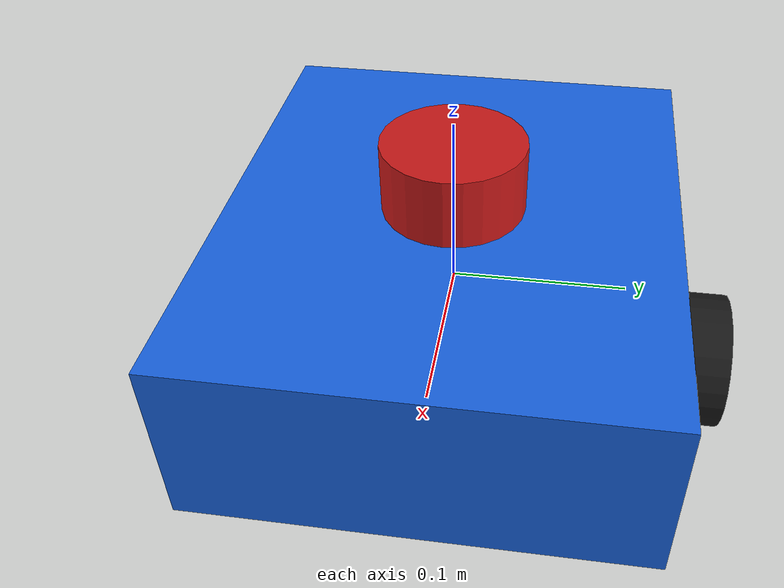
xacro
<?xml version="1.0"?>
<robot name="maze_bot" xmlns:xacro="http://www.ros.org/wiki/xacro">

  <!-- bot ist klein damit er in 1m breite cells passt.
       basis: 0.3 x 0.25 x 0.12 m, wheels radius 0.04 -->

  <xacro:property name="base_l" value="0.30" />
  <xacro:property name="base_w" value="0.25" />
  <xacro:property name="base_h" value="0.10" />
  <xacro:property name="wheel_r" value="0.04" />
  <xacro:property name="wheel_w" value="0.025" />
  <xacro:property name="wheel_sep" value="0.30" />

  <xacro:macro name="box_inertia" params="m x y z">
    <inertial>
      <mass value="${m}"/>
      <origin xyz="0 0 0" rpy="0 0 0"/>
      <inertia ixx="${m*(y*y+z*z)/12.0}" ixy="0" ixz="0"
               iyy="${m*(x*x+z*z)/12.0}" iyz="0"
               izz="${m*(x*x+y*y)/12.0}"/>
    </inertial>
  </xacro:macro>

  <xacro:macro name="cyl_inertia" params="m r l">
    <inertial>
      <mass value="${m}"/>
      <origin xyz="0 0 0" rpy="0 0 0"/>
      <inertia ixx="${m*(3*r*r+l*l)/12.0}" ixy="0" ixz="0"
               iyy="${m*(3*r*r+l*l)/12.0}" iyz="0"
               izz="${m*r*r/2.0}"/>
    </inertial>
  </xacro:macro>

  <link name="base_link">
    <visual>
      <geometry><box size="${base_l} ${base_w} ${base_h}"/></geometry>
      <material name="bot_blue"><color rgba="0.1 0.4 0.9 1"/></material>
    </visual>
    <collision>
      <geometry><box size="${base_l} ${base_w} ${base_h}"/></geometry>
    </collision>
    <xacro:box_inertia m="2.0" x="${base_l}" y="${base_w}" z="${base_h}"/>
  </link>

  <!-- wheels -->
  <xacro:macro name="wheel" params="prefix y_offset">
    <link name="${prefix}_wheel">
      <visual>
        <geometry><cylinder radius="${wheel_r}" length="${wheel_w}"/></geometry>
        <origin rpy="${pi/2} 0 0"/>
        <material name="dark"><color rgba="0.1 0.1 0.1 1"/></material>
      </visual>
      <collision>
        <geometry><cylinder radius="${wheel_r}" length="${wheel_w}"/></geometry>
        <origin rpy="${pi/2} 0 0"/>
      </collision>
      <xacro:cyl_inertia m="0.2" r="${wheel_r}" l="${wheel_w}"/>
    </link>
    <joint name="${prefix}_wheel_joint" type="continuous">
      <parent link="base_link"/>
      <child link="${prefix}_wheel"/>
      <origin xyz="0 ${y_offset} ${-base_h/2}"/>
      <axis xyz="0 1 0"/>
    </joint>
  </xacro:macro>

  <xacro:wheel prefix="left"  y_offset="${ wheel_sep/2}"/>
  <xacro:wheel prefix="right" y_offset="${-wheel_sep/2}"/>

  <!-- caster für stabilität -->
  <link name="caster">
    <visual>
      <geometry><sphere radius="${wheel_r/2}"/></geometry>
      <material name="dark"/>
    </visual>
    <collision>
      <geometry><sphere radius="${wheel_r/2}"/></geometry>
    </collision>
    <inertial>
      <mass value="0.1"/>
      <origin xyz="0 0 0"/>
      <inertia ixx="0.0001" ixy="0" ixz="0" iyy="0.0001" iyz="0" izz="0.0001"/>
    </inertial>
  </link>
  <joint name="caster_joint" type="fixed">
    <parent link="base_link"/>
    <child link="caster"/>
    <origin xyz="${base_l/2 - 0.04} 0 ${-base_h/2 - wheel_r/2}"/>
  </joint>

  <!-- lidar oben drauf -->
  <link name="lidar_link">
    <visual>
      <geometry><cylinder radius="0.04" length="0.04"/></geometry>
      <material name="lidar_red"><color rgba="0.8 0.1 0.1 1"/></material>
    </visual>
    <collision>
      <geometry><cylinder radius="0.04" length="0.04"/></geometry>
    </collision>
    <xacro:cyl_inertia m="0.1" r="0.04" l="0.04"/>
  </link>
  <joint name="lidar_joint" type="fixed">
    <parent link="base_link"/>
    <child link="lidar_link"/>
    <origin xyz="0 0 ${base_h/2 + 0.02}"/>
  </joint>

  <!-- gazebo plugins -->
  <gazebo>
    <plugin filename="gz-sim-diff-drive-system" name="gz::sim::systems::DiffDrive">
      <left_joint>left_wheel_joint</left_joint>
      <right_joint>right_wheel_joint</right_joint>
      <wheel_separation>${wheel_sep}</wheel_separation>
      <wheel_radius>${wheel_r}</wheel_radius>
      <topic>cmd_vel</topic>
      <odom_topic>odom</odom_topic>
      <frame_id>odom</frame_id>
      <child_frame_id>base_footprint</child_frame_id>
      <odom_publish_frequency>30</odom_publish_frequency>
      <tf_topic>tf</tf_topic>
    </plugin>

    <plugin filename="gz-sim-joint-state-publisher-system"
            name="gz::sim::systems::JointStatePublisher">
      <topic>joint_states</topic>
    </plugin>

    <plugin filename="gz-sim-pose-publisher-system"
            name="gz::sim::systems::PosePublisher">
      <publish_link_pose>true</publish_link_pose>
      <use_pose_vector_msg>true</use_pose_vector_msg>
      <static_publisher>true</static_publisher>
      <static_update_frequency>1</static_update_frequency>
    </plugin>
  </gazebo>

  <gazebo reference="lidar_link">
    <sensor name="lidar" type="gpu_lidar">
      <update_rate>10</update_rate>
      <topic>scan</topic>
      <gz_frame_id>lidar_link</gz_frame_id>
      <ray>
        <scan>
          <horizontal>
            <samples>360</samples>
            <resolution>1</resolution>
            <min_angle>-3.14159</min_angle>
            <max_angle>3.14159</max_angle>
          </horizontal>
          <vertical>
            <samples>1</samples>
            <min_angle>0</min_angle>
            <max_angle>0</max_angle>
          </vertical>
        </scan>
        <range>
          <min>0.08</min>
          <max>8.0</max>
          <resolution>0.01</resolution>
        </range>
      </ray>
      <always_on>1</always_on>
      <visualize>true</visualize>
    </sensor>
  </gazebo>

</robot>
